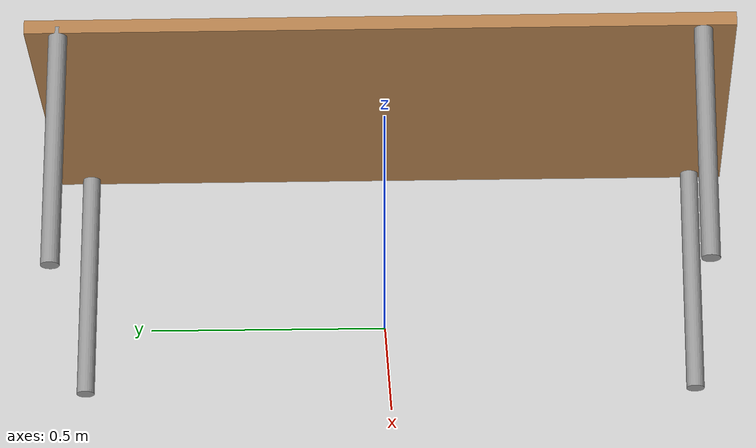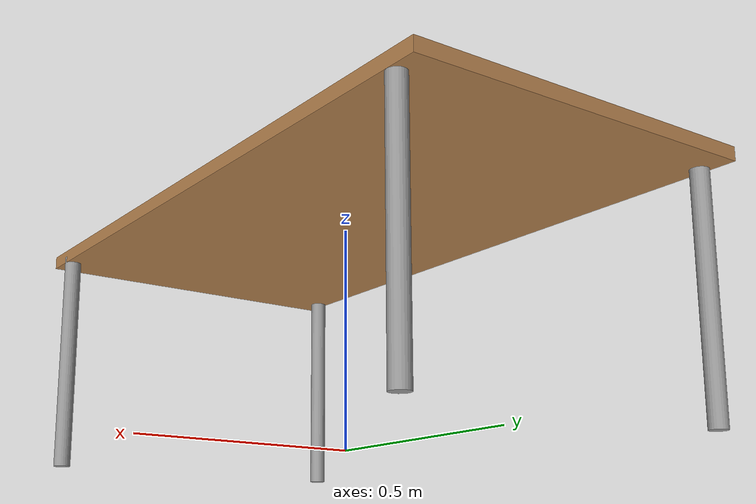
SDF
<?xml version="1.0" ?>
<sdf version="1.5">
  <model name="table">
    <static>true</static>
    <link name="link">
      <collision name="surface">
        <pose>0 0 0.26 0 0 1.57</pose>
        <geometry>
          <box>
            <size>1.5 0.8 0.4</size>
          </box>
        </geometry>
        <surface>
          <friction>
            <ode>
              <mu>0.6</mu>
              <mu2>0.6</mu2>
            </ode>
          </friction>
        </surface>
      </collision>
      <collision name="surface">
        <pose>0 0 0.52 0 0 1.57</pose>
        <geometry>
          <box>
            <size>1.5 0.8 0.06</size>
          </box>
        </geometry>
        <surface>
          <friction>
            <ode>
              <mu>0.6</mu>
              <mu2>0.6</mu2>
            </ode>
          </friction>
        </surface>
      </collision>
      <visual name="visual1">
        <pose>0 0 0.535 0 0 1.57</pose>
        <geometry>
          <box>
            <size>1.5 0.8 0.03</size>
          </box>
        </geometry>
        <material>
          <script>
            <uri>file://media/materials/scripts/gazebo.material</uri>
            <name>Gazebo/Wood</name>
          </script>
        </material>
      </visual>
      <collision name="front_left_leg">
        <pose>0.38 0.68 0.2675 0 0 1.57</pose>
        <geometry>
          <cylinder>
            <radius>0.02</radius>
            <length>0.535</length>
          </cylinder>
        </geometry>
      </collision>
      <visual name="front_left_leg">
        <pose>0.38 0.68 0.2675 0 0 1.57</pose>
        <geometry>
          <cylinder>
            <radius>0.02</radius>
            <length>0.535</length>
          </cylinder>
        </geometry>
        <material>
          <script>
            <uri>file://media/materials/scripts/gazebo.material</uri>
            <name>Gazebo/Grey</name>
          </script>
        </material>
      </visual>
      <collision name="front_right_leg">
        <pose>-0.38 0.68 0.2675 0 0 1.57</pose>
        <geometry>
          <cylinder>
            <radius>0.02</radius>
            <length>0.535</length>
          </cylinder>
        </geometry>
      </collision>
      <visual name="front_right_leg">
        <pose>-0.38 0.68 0.2675 0 0 1.57</pose>
        <geometry>
          <cylinder>
            <radius>0.02</radius>
            <length>0.535</length>
          </cylinder>
        </geometry>
        <material>
          <script>
            <uri>file://media/materials/scripts/gazebo.material</uri>
            <name>Gazebo/Grey</name>
          </script>
        </material>
      </visual>
      <collision name="back_right_leg">
        <pose>-0.38 -0.68 0.2675 0 0 1.57</pose>
        <geometry>
          <cylinder>
            <radius>0.02</radius>
            <length>0.535</length>
          </cylinder>
        </geometry>
      </collision>
      <visual name="back_right_leg">
        <pose>-0.38 -0.68 0.2675 0 0 1.57</pose>
        <geometry>
          <cylinder>
            <radius>0.02</radius>
            <length>0.535</length>
          </cylinder>
        </geometry>
        <material>
          <script>
            <uri>file://media/materials/scripts/gazebo.material</uri>
            <name>Gazebo/Grey</name>
          </script>
        </material>
      </visual>
      <collision name="back_left_leg">
        <pose>0.38 -0.68 0.2675 0 0 1.57</pose>
        <geometry>
          <cylinder>
            <radius>0.02</radius>
            <length>0.535</length>
          </cylinder>
        </geometry>
      </collision>
      <visual name="back_left_leg">
        <pose>0.38 -0.68 0.2675 0 0 1.57</pose>
        <geometry>
          <cylinder>
            <radius>0.02</radius>
            <length>0.535</length>
          </cylinder>
        </geometry>
        <material>
          <script>
            <uri>file://media/materials/scripts/gazebo.material</uri>
            <name>Gazebo/Grey</name>
          </script>
        </material>
      </visual>
    </link>
  </model>
</sdf>
